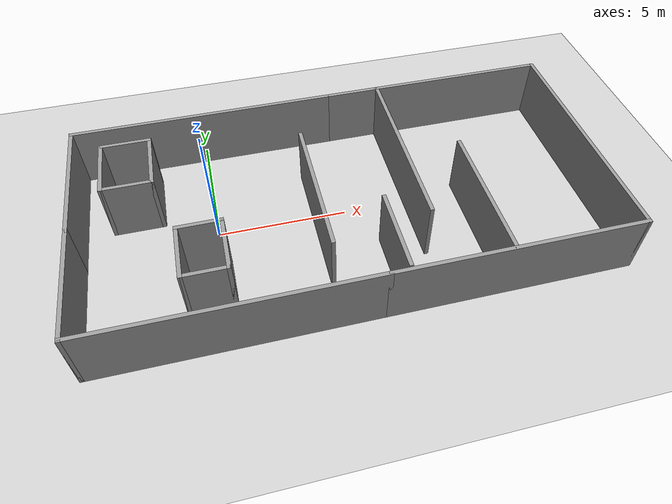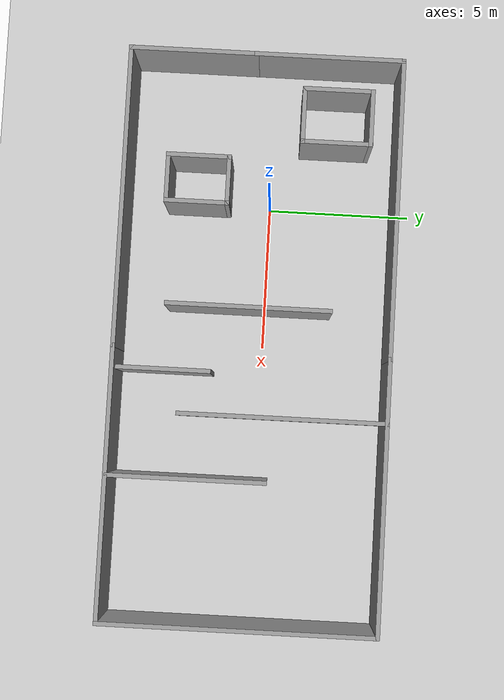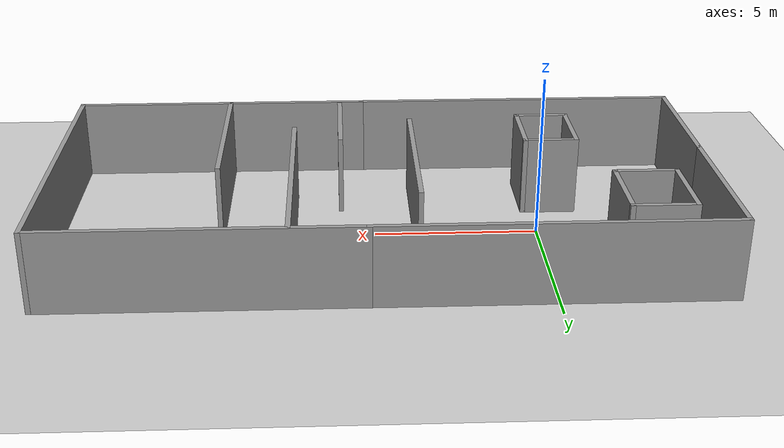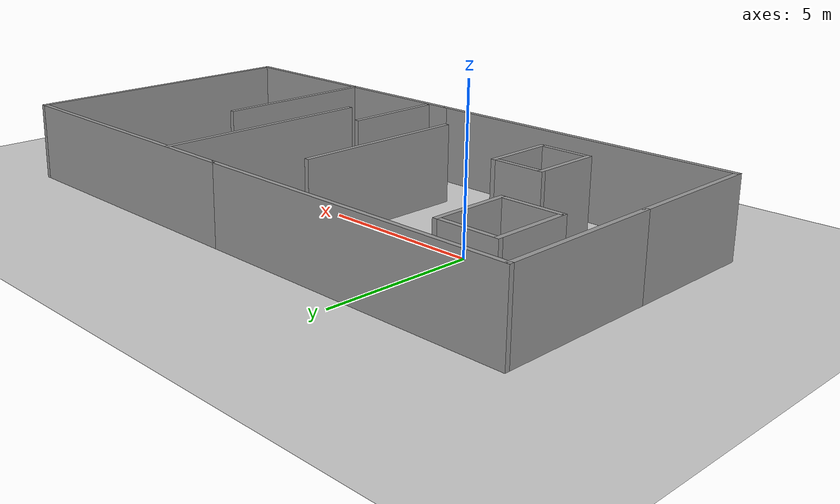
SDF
<sdf version="1.7">
 <world name="default">
  <light name="sun" type="directional">
   <pose>0 0 10 0 -0 0</pose>
   <diffuse>0.8 0.8 0.8 1</diffuse>
   <specular>0.2 0.2 0.2 1</specular>
   <attenuation>
    <range>1000</range>
    <constant>0.9</constant>
    <linear>0.01</linear>
    <quadratic>0.001</quadratic>
   </attenuation>
   <direction>-0.5 0.1 -0.9</direction>
   <spot><inner_angle>0</inner_angle><outer_angle>0</outer_angle><falloff>0</falloff></spot>
  </light>
  <model name="ground_plane">
   <static>1</static>
   <link name="link">
    <collision name="collision">
     <geometry><plane><normal>0 0 1</normal><size>100 100</size></plane></geometry>
     <surface>
      <contact><collide_bitmask>65535</collide_bitmask></contact>
      <friction><ode><mu>100</mu><mu2>50</mu2></ode></friction>
     </surface>
    </collision>
    <visual name="visual">
     <cast_shadows>0</cast_shadows>
     <geometry><plane><normal>0 0 1</normal><size>100 100</size></plane></geometry>
     <material>
      <script><uri>file://media/materials/scripts/gazebo.material</uri><name>Gazebo/Grey</name></script>
     </material>
    </visual>
   </link>
  </model>
  <gravity>0 0 -9.8</gravity>
  <magnetic_field>6e-06 2.3e-05 -4.2e-05</magnetic_field>
  <atmosphere type="adiabatic"/>
  <physics type="ode">
   <max_step_size>0.001</max_step_size>
   <real_time_factor>1</real_time_factor>
   <real_time_update_rate>1000</real_time_update_rate>
  </physics>
  <scene><ambient>0.4 0.4 0.4 1</ambient><background>0.7 0.7 0.7 1</background><shadows>1</shadows></scene>
  <spherical_coordinates>
   <surface_model>EARTH_WGS84</surface_model>
   <latitude_deg>0</latitude_deg>
   <longitude_deg>0</longitude_deg>
   <elevation>0</elevation>
   <heading_deg>0</heading_deg>
  </spherical_coordinates>
  <model name="my_box_house">
   <pose>4.81 -0.335 0 0 -0 0</pose>
   <link name="Wall_12">
    <collision name="Wall_12_Collision">
     <geometry><box><size>9.5 0.15 2.5</size></box></geometry>
     <pose>0 0 1.25 0 -0 0</pose>
    </collision>
    <visual name="Wall_12_Visual">
     <pose>0 0 1.25 0 -0 0</pose>
     <geometry><box><size>9.5 0.15 2.5</size></box></geometry>
     <material>
      <script><uri>file://media/materials/scripts/gazebo.material</uri><name>Gazebo/Grey</name></script>
      <ambient>1 1 1 1</ambient>
     </material>
     <meta><layer>0</layer></meta>
    </visual>
    <pose>5.175 -4.725 0 0 -0 0</pose>
   </link>
   <link name="Wall_13">
    <collision name="Wall_13_Collision">
     <geometry><box><size>9.6 0.15 2.5</size></box></geometry>
     <pose>0 0 1.25 0 -0 0</pose>
    </collision>
    <visual name="Wall_13_Visual">
     <pose>0 0 1.25 0 -0 0</pose>
     <geometry><box><size>9.6 0.15 2.5</size></box></geometry>
     <material>
      <script><uri>file://media/materials/scripts/gazebo.material</uri><name>Gazebo/Grey</name></script>
      <ambient>1 1 1 1</ambient>
     </material>
     <meta><layer>0</layer></meta>
    </visual>
    <pose>9.85 0 0 0 -0 1.5708</pose>
   </link>
   <link name="Wall_15">
    <collision name="Wall_15_Collision">
     <geometry><box><size>2.5 0.15 2.5</size></box></geometry>
     <pose>0 0 1.25 0 -0 0</pose>
    </collision>
    <visual name="Wall_15_Visual">
     <pose>0 0 1.25 0 -0 0</pose>
     <geometry><box><size>2.5 0.15 2.5</size></box></geometry>
     <material>
      <script><uri>file://media/materials/scripts/gazebo.material</uri><name>Gazebo/Grey</name></script>
      <ambient>1 1 1 1</ambient>
     </material>
     <meta><layer>0</layer></meta>
    </visual>
    <pose>-8.71526 2.53663 0 0 -0 -1.5708</pose>
   </link>
   <link name="Wall_16">
    <collision name="Wall_16_Collision">
     <geometry><box><size>2 0.15 2.5</size></box></geometry>
     <pose>0 0 1.25 0 -0 0</pose>
    </collision>
    <visual name="Wall_16_Visual">
     <pose>0 0 1.25 0 -0 0</pose>
     <geometry><box><size>2 0.15 2.5</size></box></geometry>
     <material>
      <script><uri>file://media/materials/scripts/gazebo.material</uri><name>Gazebo/Grey</name></script>
      <ambient>1 1 1 1</ambient>
     </material>
     <meta><layer>0</layer></meta>
    </visual>
    <pose>-7.79026 1.36163 0 0 -0 0</pose>
   </link>
   <link name="Wall_17">
    <collision name="Wall_17_Collision">
     <geometry><box><size>2.5 0.15 2.5</size></box></geometry>
     <pose>0 0 1.25 0 -0 0</pose>
    </collision>
    <visual name="Wall_17_Visual">
     <pose>0 0 1.25 0 -0 0</pose>
     <geometry><box><size>2.5 0.15 2.5</size></box></geometry>
     <material>
      <script><uri>file://media/materials/scripts/gazebo.material</uri><name>Gazebo/Grey</name></script>
      <ambient>1 1 1 1</ambient>
     </material>
     <meta><layer>0</layer></meta>
    </visual>
    <pose>-6.86526 2.53663 0 0 -0 1.5708</pose>
   </link>
   <link name="Wall_18">
    <collision name="Wall_18_Collision">
     <geometry><box><size>2 0.15 2.5</size></box></geometry>
     <pose>0 0 1.25 0 -0 0</pose>
    </collision>
    <visual name="Wall_18_Visual">
     <pose>0 0 1.25 0 -0 0</pose>
     <geometry><box><size>2 0.15 2.5</size></box></geometry>
     <material>
      <script><uri>file://media/materials/scripts/gazebo.material</uri><name>Gazebo/Grey</name></script>
      <ambient>1 1 1 1</ambient>
     </material>
     <meta><layer>0</layer></meta>
    </visual>
    <pose>-7.79026 3.71163 0 0 -0 3.14159</pose>
   </link>
   <link name="Wall_2">
    <collision name="Wall_2_Collision">
     <geometry><box><size>4.5 0.15 2.5</size></box></geometry>
     <pose>0 0 1.25 0 -0 0</pose>
    </collision>
    <visual name="Wall_2_Visual">
     <pose>0 0 1.25 0 -0 0</pose>
     <geometry><box><size>4.5 0.15 2.5</size></box></geometry>
     <material>
      <script><uri>file://media/materials/scripts/gazebo.material</uri><name>Gazebo/Grey</name></script>
      <ambient>1 1 1 1</ambient>
     </material>
     <meta><layer>0</layer></meta>
    </visual>
    <pose>-9.85 -2.55 0 0 -0 -1.5708</pose>
   </link>
   <link name="Wall_20">
    <collision name="Wall_20_Collision">
     <geometry><box><size>5.75 0.15 2.5</size></box></geometry>
     <pose>0 0 1.25 0 -0 0</pose>
    </collision>
    <visual name="Wall_20_Visual">
     <pose>0 0 1.25 0 -0 0</pose>
     <geometry><box><size>5.75 0.15 2.5</size></box></geometry>
     <material>
      <script><uri>file://media/materials/scripts/gazebo.material</uri><name>Gazebo/Grey</name></script>
      <ambient>1 1 1 1</ambient>
     </material>
     <meta><layer>0</layer></meta>
    </visual>
    <pose>-1.03711 -0.189618 0 0 -0 -1.5708</pose>
   </link>
   <link name="Wall_22">
    <collision name="Wall_22_Collision">
     <geometry><box><size>3.25 0.15 2.5</size></box></geometry>
     <pose>0 0 1.25 0 -0 0</pose>
    </collision>
    <visual name="Wall_22_Visual">
     <pose>0 0 1.25 0 -0 0</pose>
     <geometry><box><size>3.25 0.15 2.5</size></box></geometry>
     <material>
      <script><uri>file://media/materials/scripts/gazebo.material</uri><name>Gazebo/Grey</name></script>
      <ambient>1 1 1 1</ambient>
     </material>
     <meta><layer>0</layer></meta>
    </visual>
    <pose>1.22656 -2.97753 0 0 -0 -1.5708</pose>
   </link>
   <link name="Wall_24">
    <collision name="Wall_24_Collision">
     <geometry><box><size>7.25 0.15 2.5</size></box></geometry>
     <pose>0 0 1.25 0 -0 0</pose>
    </collision>
    <visual name="Wall_24_Visual">
     <pose>0 0 1.25 0 -0 0</pose>
     <geometry><box><size>7.25 0.15 2.5</size></box></geometry>
     <material>
      <script><uri>file://media/materials/scripts/gazebo.material</uri><name>Gazebo/Grey</name></script>
      <ambient>1 1 1 1</ambient>
     </material>
     <meta><layer>0</layer></meta>
    </visual>
    <pose>2.69489 1.17111 0 0 -0 -1.5708</pose>
   </link>
   <link name="Wall_26">
    <collision name="Wall_26_Collision">
     <geometry><box><size>5.5 0.15 2.5</size></box></geometry>
     <pose>0 0 1.25 0 -0 0</pose>
    </collision>
    <visual name="Wall_26_Visual">
     <pose>0 0 1.25 0 -0 0</pose>
     <geometry><box><size>5.5 0.15 2.5</size></box></geometry>
     <material>
      <script><uri>file://media/materials/scripts/gazebo.material</uri><name>Gazebo/Grey</name></script>
      <ambient>1 1 1 1</ambient>
     </material>
     <meta><layer>0</layer></meta>
    </visual>
    <pose>4.89739 -1.99509 0 0 -0 1.5708</pose>
   </link>
   <link name="Wall_28">
    <collision name="Wall_28_Collision">
     <geometry><box><size>2.25 0.15 2.5</size></box></geometry>
     <pose>0 0 1.25 0 -0 0</pose>
    </collision>
    <visual name="Wall_28_Visual">
     <pose>0 0 1.25 0 -0 0</pose>
     <geometry><box><size>2.25 0.15 2.5</size></box></geometry>
     <material>
      <script><uri>file://media/materials/scripts/gazebo.material</uri><name>Gazebo/Grey</name></script>
      <ambient>1 1 1 1</ambient>
     </material>
     <meta><layer>0</layer></meta>
    </visual>
    <pose>-6.17627 -2.17163 0 0 -0 -1.5708</pose>
   </link>
   <link name="Wall_29">
    <collision name="Wall_29_Collision">
     <geometry><box><size>1.75 0.15 2.5</size></box></geometry>
     <pose>0 0 1.25 0 -0 0</pose>
    </collision>
    <visual name="Wall_29_Visual">
     <pose>0 0 1.25 0 -0 0</pose>
     <geometry><box><size>1.75 0.15 2.5</size></box></geometry>
     <material>
      <script><uri>file://media/materials/scripts/gazebo.material</uri><name>Gazebo/Grey</name></script>
      <ambient>1 1 1 1</ambient>
     </material>
     <meta><layer>0</layer></meta>
    </visual>
    <pose>-5.37627 -3.22163 0 0 -0 0</pose>
   </link>
   <link name="Wall_3">
    <collision name="Wall_3_Collision">
     <geometry><box><size>10.5 0.15 2.5</size></box></geometry>
     <pose>0 0 1.25 0 -0 0</pose>
    </collision>
    <visual name="Wall_3_Visual">
     <pose>0 0 1.25 0 -0 0</pose>
     <geometry><box><size>10.5 0.15 2.5</size></box></geometry>
     <material>
      <script><uri>file://media/materials/scripts/gazebo.material</uri><name>Gazebo/Grey</name></script>
      <ambient>1 1 1 1</ambient>
     </material>
     <meta><layer>0</layer></meta>
    </visual>
    <pose>-4.675 -4.725 0 0 -0 0</pose>
   </link>
   <link name="Wall_30">
    <collision name="Wall_30_Collision">
     <geometry><box><size>2.25 0.15 2.5</size></box></geometry>
     <pose>0 0 1.25 0 -0 0</pose>
    </collision>
    <visual name="Wall_30_Visual">
     <pose>0 0 1.25 0 -0 0</pose>
     <geometry><box><size>2.25 0.15 2.5</size></box></geometry>
     <material>
      <script><uri>file://media/materials/scripts/gazebo.material</uri><name>Gazebo/Grey</name></script>
      <ambient>1 1 1 1</ambient>
     </material>
     <meta><layer>0</layer></meta>
    </visual>
    <pose>-4.57627 -2.17163 0 0 -0 1.5708</pose>
   </link>
   <link name="Wall_31">
    <collision name="Wall_31_Collision">
     <geometry><box><size>1.75 0.15 2.5</size></box></geometry>
     <pose>0 0 1.25 0 -0 0</pose>
    </collision>
    <visual name="Wall_31_Visual">
     <pose>0 0 1.25 0 -0 0</pose>
     <geometry><box><size>1.75 0.15 2.5</size></box></geometry>
     <material>
      <script><uri>file://media/materials/scripts/gazebo.material</uri><name>Gazebo/Grey</name></script>
      <ambient>1 1 1 1</ambient>
     </material>
     <meta><layer>0</layer></meta>
    </visual>
    <pose>-5.37627 -1.12163 0 0 -0 3.14159</pose>
   </link>
   <link name="Wall_6">
    <collision name="Wall_6_Collision">
     <geometry><box><size>10.5 0.15 2.5</size></box></geometry>
     <pose>0 0 1.25 0 -0 0</pose>
    </collision>
    <visual name="Wall_6_Visual">
     <pose>0 0 1.25 0 -0 0</pose>
     <geometry><box><size>10.5 0.15 2.5</size></box></geometry>
     <material>
      <script><uri>file://media/materials/scripts/gazebo.material</uri><name>Gazebo/Grey</name></script>
      <ambient>1 1 1 1</ambient>
     </material>
     <meta><layer>0</layer></meta>
    </visual>
    <pose>-4.675 4.725 0 0 -0 3.14159</pose>
   </link>
   <link name="Wall_7">
    <collision name="Wall_7_Collision">
     <geometry><box><size>5.25 0.15 2.5</size></box></geometry>
     <pose>0 0 1.25 0 -0 0</pose>
    </collision>
    <visual name="Wall_7_Visual">
     <pose>0 0 1.25 0 -0 0</pose>
     <geometry><box><size>5.25 0.15 2.5</size></box></geometry>
     <material>
      <script><uri>file://media/materials/scripts/gazebo.material</uri><name>Gazebo/Grey</name></script>
      <ambient>1 1 1 1</ambient>
     </material>
     <meta><layer>0</layer></meta>
    </visual>
    <pose>-9.85 2.175 0 0 -0 -1.5708</pose>
   </link>
   <link name="Wall_9">
    <collision name="Wall_9_Collision">
     <geometry><box><size>9.5 0.15 2.5</size></box></geometry>
     <pose>0 0 1.25 0 -0 0</pose>
    </collision>
    <visual name="Wall_9_Visual">
     <pose>0 0 1.25 0 -0 0</pose>
     <geometry><box><size>9.5 0.15 2.5</size></box></geometry>
     <material>
      <script><uri>file://media/materials/scripts/gazebo.material</uri><name>Gazebo/Grey</name></script>
      <ambient>1 1 1 1</ambient>
     </material>
     <meta><layer>0</layer></meta>
    </visual>
    <pose>5.175 4.725 0 0 -0 0</pose>
   </link>
   <static>1</static>
  </model>
 </world>
</sdf>
